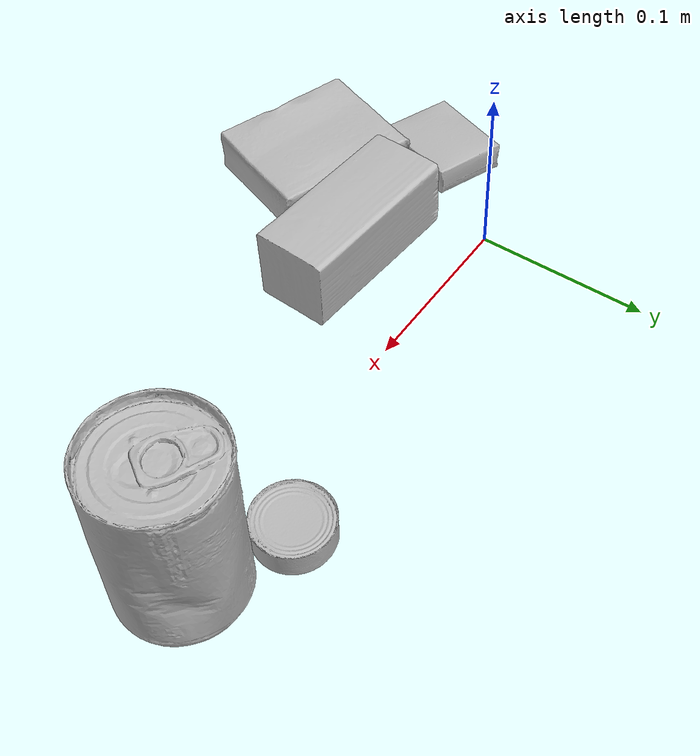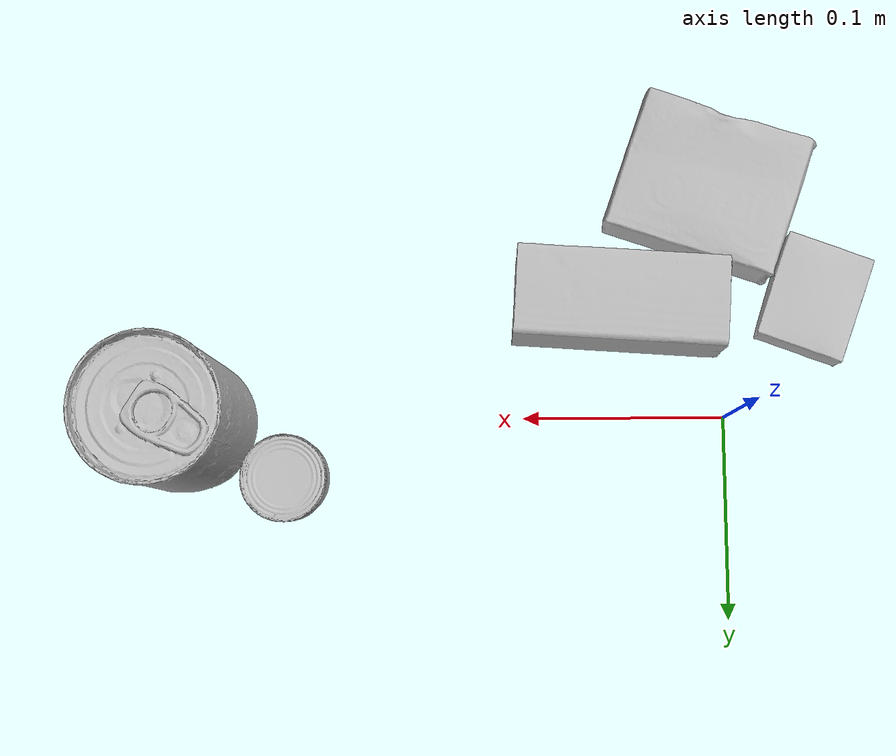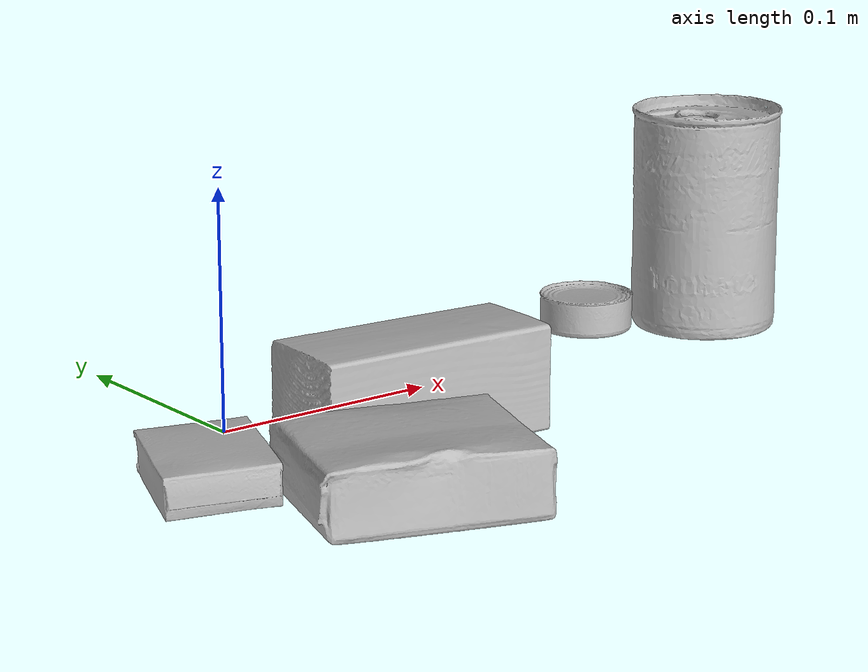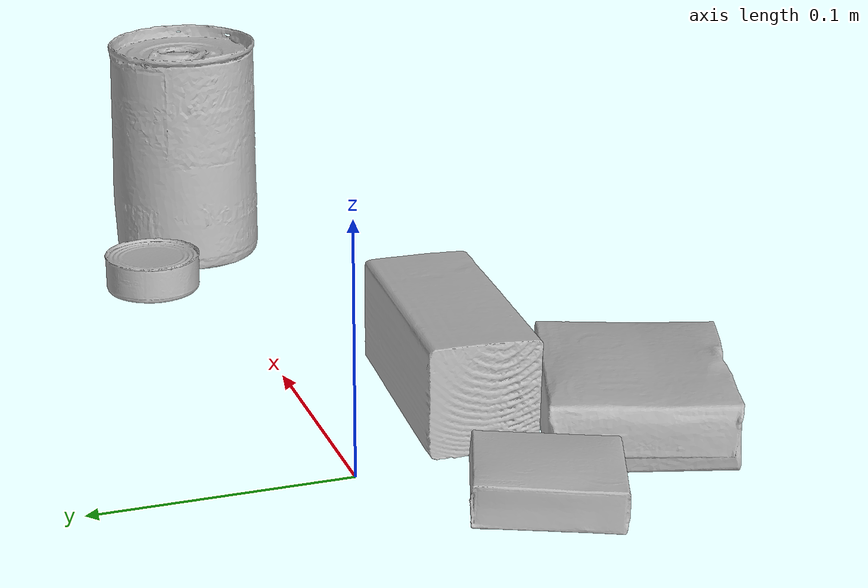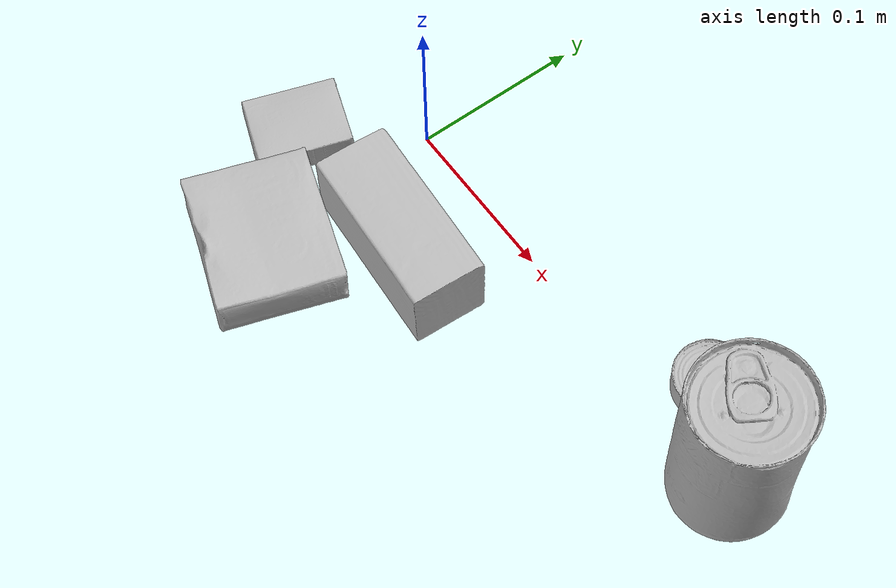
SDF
<sdf version="1.4">
  <world name="default">
    <light name="light1" type="point">
      <pose>0 0 1 0 0 0</pose>
      <diffuse>3 3 3 1</diffuse>
      <specular>3 3 3 1</specular>
    </light>
    <light name="light2" type="point">
      <pose>0 0.5 2 0 0 0</pose>
      <diffuse>1 1 1 1</diffuse>
      <specular>1 1 1 1</specular>
    </light>
    <light name="light3" type="point">
      <pose>0 0.5 2 0 0 0</pose>
      <diffuse>3 3 3 1</diffuse>
      <specular>3 3 3 1</specular>
    </light>
    <scene>
      <ambient>0.7 0.7 0.7</ambient>
    </scene>
    <model name="box1">
      <link name="link_box1">
        <collision name="default">
          <geometry>
            <mesh>
              <uri>model://pudding_box/collision_meshes/collision.obj</uri>
              <scale>0.5 0.5 0.5</scale>
            </mesh>
          </geometry>
          <surface>
            <friction>
              <ode>
                <mu>0.5</mu>
                <mu2>0.5</mu2>
              </ode>
            </friction>
          <contact>
        <ode>
            <max_vel>0</max_vel>
            <min_depth>0.0001</min_depth>
            <kp>1e8</kp>
        </ode>
    </contact></surface>
        </collision>
        <visual name="default">
          <geometry>
            <mesh>
              <uri>model://pudding_box/visual_meshes/visual.dae</uri>
              <scale>0.5 0.5 0.5</scale>
            </mesh>
          </geometry>
        </visual>
        <inertial>
          <mass>0.049221161752939224</mass>
          <pose>0.00024474109522998333 0.00040339428232982755 -0.0002594413817860186 0.005213101772454675 -0.006603800120423707 0.020079827019105066</pose>
          <inertia>
            <ixx>1.3910499e-05</ixx>
            <iyy>9.3590825e-06</iyy>
            <izz>2.0542482e-05</izz>
            <ixy>0</ixy>
            <ixz>0</ixz>
            <iyz>0</iyz>
          </inertia>
        </inertial>
      </link>
      <pose>-0.04488394036889076 -0.05807063356041908 0.009862905368208885 0.022348411543211124 -0.011391789515354588 -0.3504266191249776</pose>
    </model>
    <model name="box2">
      <link name="link_box2">
        <collision name="default">
          <geometry>
            <mesh>
              <uri>model://gelatin_box/collision_meshes/collision.obj</uri>
              <scale>1.0 1.0 1.0</scale>
            </mesh>
          </geometry>
          <surface>
            <friction>
              <ode>
                <mu>0.5</mu>
                <mu2>0.5</mu2>
              </ode>
            </friction>
          <contact>
        <ode>
            <max_vel>0</max_vel>
            <min_depth>0.0001</min_depth>
            <kp>1e8</kp>
        </ode>
    </contact></surface>
        </collision>
        <visual name="default">
          <geometry>
            <mesh>
              <uri>model://gelatin_box/visual_meshes/visual.dae</uri>
              <scale>1.0 1.0 1.0</scale>
            </mesh>
          </geometry>
        </visual>
        <inertial>
          <mass>0.1975366622209549</mass>
          <pose>0.000431961816502735 0.00011156871187267825 -0.00036403207923285663 -0.0010503719683328595 -0.0047558182256164224 0.016440557608480007</pose>
          <inertia>
            <ixx>0.00013944478</ixx>
            <iyy>9.960467e-05</iyy>
            <izz>0.00021226601</izz>
            <ixy>0</ixy>
            <ixz>0</ixz>
            <iyz>0</iyz>
          </inertia>
        </inertial>
      </link>
      <pose>0.00678939837962389 -0.1143626943230629 0.015182312577962875 0.004447479662033068 -0.0058008690426166855 -1.9094018789190814</pose>
    </model>
    <model name="box3">
      <link name="link_box3">
        <collision name="default">
          <geometry>
            <mesh>
              <uri>model://wood_block/collision_meshes/collision.obj</uri>
              <scale>0.5 0.5 0.5</scale>
            </mesh>
          </geometry>
          <surface>
            <friction>
              <ode>
                <mu>0.5</mu>
                <mu2>0.5</mu2>
              </ode>
            </friction>
          <contact>
        <ode>
            <max_vel>0</max_vel>
            <min_depth>0.0001</min_depth>
            <kp>1e8</kp>
        </ode>
    </contact></surface>
        </collision>
        <visual name="default">
          <geometry>
            <mesh>
              <uri>model://wood_block/visual_meshes/visual.dae</uri>
              <scale>0.5 0.5 0.5</scale>
            </mesh>
          </geometry>
        </visual>
        <inertial>
          <mass>0.2799808979034424</mass>
          <pose>-2.9066577553749084e-06 -0.000285404734313488 0.00013204291462898254 -0.05220811074253327 -0.005192695744074178 -0.0068613776969266935</pose>
          <inertia>
            <ixx>9.3664195e-05</ixx>
            <iyy>0.0002958853</iyy>
            <izz>0.00029477844</izz>
            <ixy>0</ixy>
            <ixz>0</ixz>
            <iyz>0</iyz>
          </inertia>
        </inertial>
      </link>
      <pose>0.05275401845574379 -0.05546794459223747 0.022629214450716972 -0.005197610089166144 0.005719183942221468 3.0761582780951704</pose>
    </model>
    <model name="can1">
      <link name="link_can1">
        <collision name="default">
          <geometry>
            <mesh>
              <uri>model://tomato_soup_can/collision_meshes/collision.obj</uri>
              <scale>1.0 1.0 1.0</scale>
            </mesh>
          </geometry>
          <surface>
            <friction>
              <ode>
                <mu>0.5</mu>
                <mu2>0.5</mu2>
              </ode>
            </friction>
          <contact>
        <ode>
            <max_vel>0</max_vel>
            <min_depth>0.0001</min_depth>
            <kp>1e8</kp>
        </ode>
    </contact></surface>
        </collision>
        <visual name="default">
          <geometry>
            <mesh>
              <uri>model://tomato_soup_can/visual_meshes/visual.dae</uri>
              <scale>1.0 1.0 1.0</scale>
            </mesh>
          </geometry>
        </visual>
        <inertial>
          <mass>0.35683923959732056</mass>
          <pose>0.00012652271834667772 0.00010805513738887385 -0.0017973982030525804 0.007020067402313596 0.00042299257688944205 -0.009903281374499336</pose>
          <inertia>
            <ixx>0.0003912439</ixx>
            <iyy>0.00038898273</iyy>
            <izz>0.00020277809</izz>
            <ixy>0</ixy>
            <ixz>0</ixz>
            <iyz>0</iyz>
          </inertia>
        </inertial>
      </link>
      <pose>0.26498717069625854 0.0016411669785156846 0.051274001598358154 -1.281627862053376e-06 -1.092279135940548e-06 -2.417692180925176</pose>
    </model>
    <model name="can2">
      <link name="link_can2">
        <collision name="default">
          <geometry>
            <mesh>
              <uri>model://tuna_fish_can/collision_meshes/collision.obj</uri>
              <scale>0.5 0.5 0.5</scale>
            </mesh>
          </geometry>
          <surface>
            <friction>
              <ode>
                <mu>0.5</mu>
                <mu2>0.5</mu2>
              </ode>
            </friction>
          <contact>
        <ode>
            <max_vel>0</max_vel>
            <min_depth>0.0001</min_depth>
            <kp>1e8</kp>
        </ode>
    </contact></surface>
        </collision>
        <visual name="default">
          <geometry>
            <mesh>
              <uri>model://tuna_fish_can/visual_meshes/visual.dae</uri>
              <scale>0.5 0.5 0.5</scale>
            </mesh>
          </geometry>
        </visual>
        <inertial>
          <mass>0.011508840136229992</mass>
          <pose>-2.0362092982395552e-05 -7.256176559167216e-06 -0.0005269026150926948 -0.0017944756095399476 0.0001716207335623094 0.24053890436657652</pose>
          <inertia>
            <ixx>1.5560124e-06</ixx>
            <iyy>1.5495272e-06</iyy>
            <izz>2.662559e-06</izz>
            <ixy>0</ixy>
            <ixz>0</ixz>
            <iyz>0</iyz>
          </inertia>
        </inertial>
      </link>
      <pose>0.21749955415725708 0.028915613889694214 0.008519935421645641 2.9794080058253256e-05 -1.6278584766096965e-06 -1.754392628786192</pose>
    </model>
  <physics type="ode">
      <max_contacts>50</max_contacts>
      <ode>
        <solver>
          <type>quick</type>
          <iters>75</iters>
        </solver>
        <constraints>
          <contact_max_correcting_vel>0</contact_max_correcting_vel>
          <contact_surface_layer>0</contact_surface_layer>
        </constraints>
      </ode>
    </physics></world>
</sdf>
